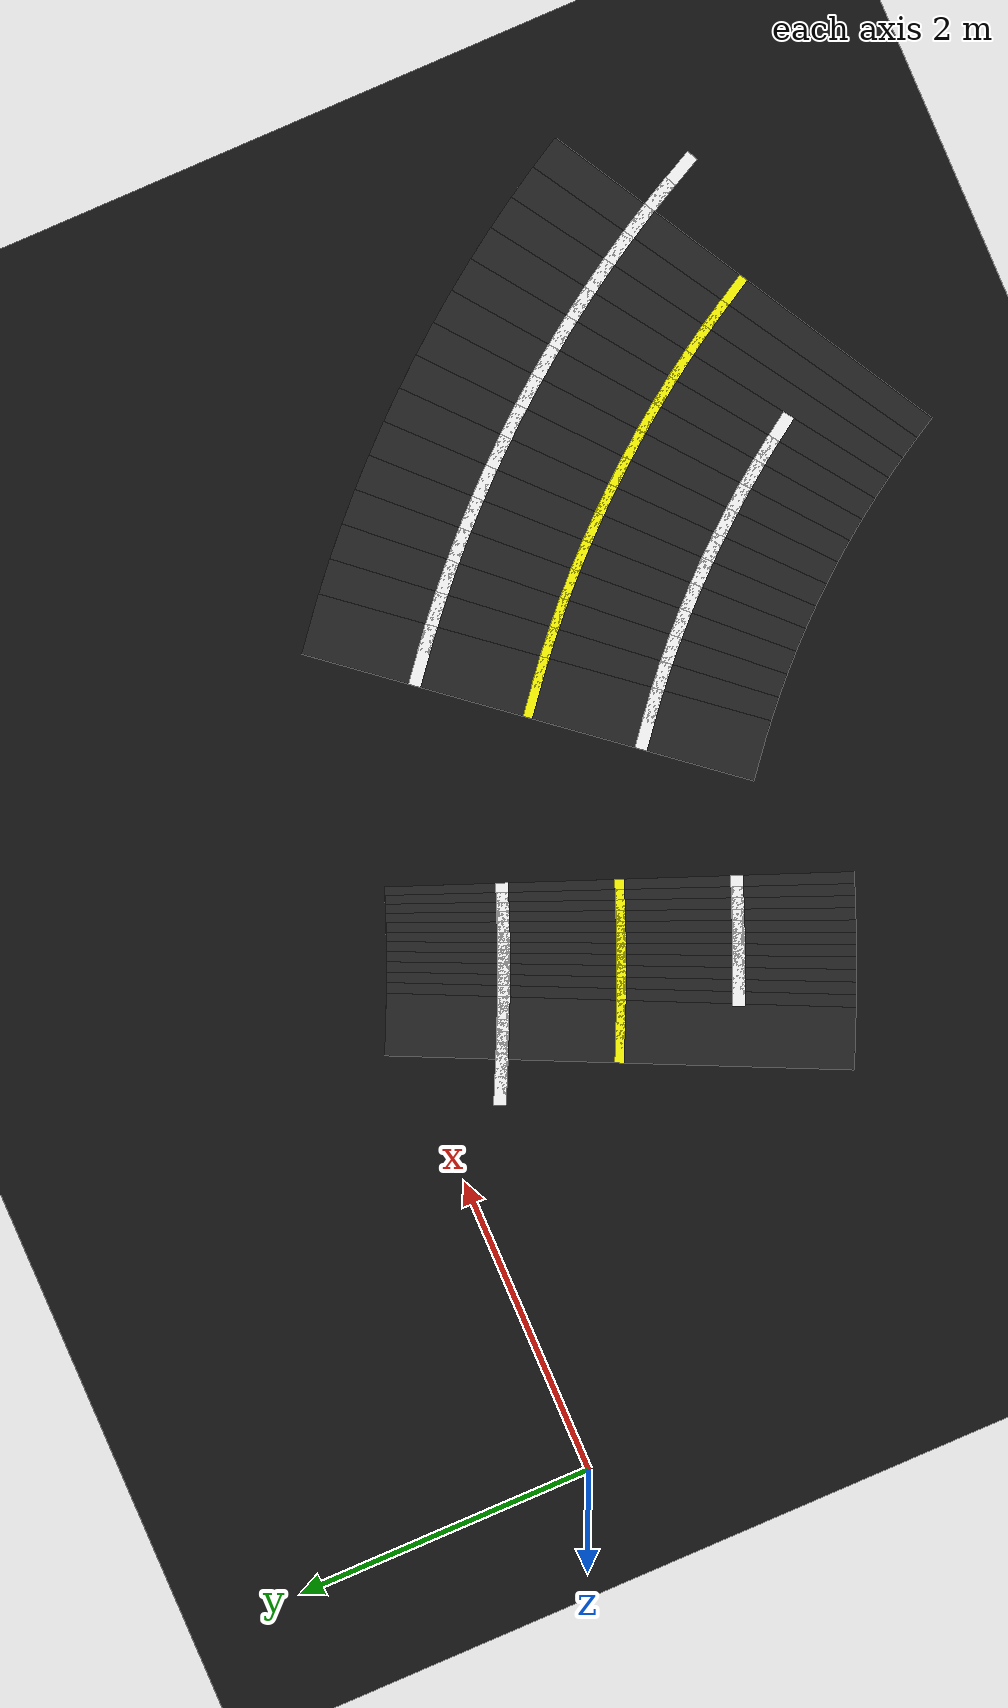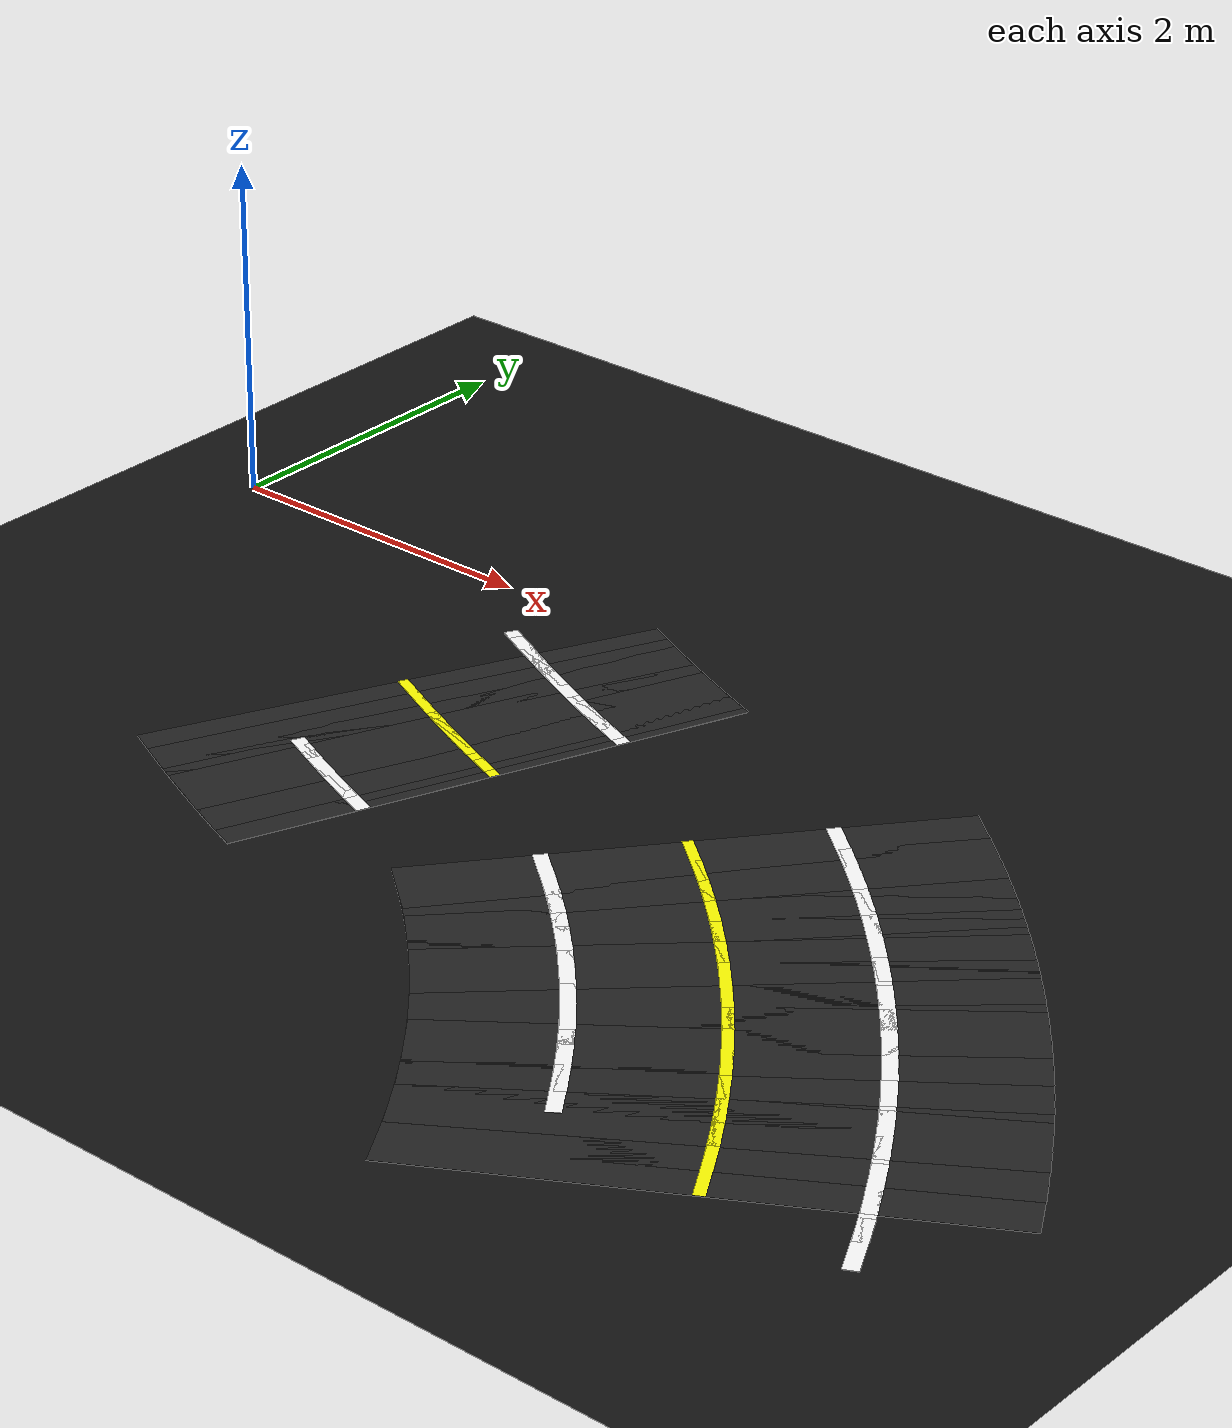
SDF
<sdf version="1.6">
 <world name="figure8_world">
  <model name="ground_plane">
   <static>true</static>
   <link name="link">
    <collision name="collision">
     <geometry><plane><normal>0 0 1</normal><size>120 120</size></plane></geometry>
    </collision>
    <visual name="visual">
     <geometry><plane><normal>0 0 1</normal><size>120 120</size></plane></geometry>
     <material><ambient>0.08 0.08 0.08 1</ambient><diffuse>0.08 0.08 0.08 1</diffuse></material>
    </visual>
   </link>
  </model>
  <model name="seg_01376">
   <static>true</static>
   <pose>4.7199 -1.6714 0.0010 0 0 -0.6807</pose>
   <link name="link">
    <collision name="collision"><geometry><box><size>0.4000 3.0000 0.002</size></box></geometry></collision>
    <visual name="visual">
     <geometry><box><size>0.4000 3.0000 0.002</size></box></geometry>
     <material><ambient>0.14 0.14 0.14 1</ambient><diffuse>0.14 0.14 0.14 1</diffuse></material>
    </visual>
   </link>
  </model>
  <model name="seg_01377">
   <static>true</static>
   <pose>5.1919 -1.0885 0.0030 0 0 -0.6807</pose>
   <link name="link">
    <collision name="collision"><geometry><box><size>0.4000 0.0800 0.002</size></box></geometry></collision>
    <visual name="visual">
     <geometry><box><size>0.4000 0.0800 0.002</size></box></geometry>
     <material><ambient>1 1 1 1</ambient><diffuse>1 1 1 1</diffuse></material>
    </visual>
   </link>
  </model>
  <model name="seg_01378">
   <static>true</static>
   <pose>4.2479 -2.2543 0.0030 0 0 -0.6807</pose>
   <link name="link">
    <collision name="collision"><geometry><box><size>0.4000 0.0800 0.002</size></box></geometry></collision>
    <visual name="visual">
     <geometry><box><size>0.4000 0.0800 0.002</size></box></geometry>
     <material><ambient>1 1 1 1</ambient><diffuse>1 1 1 1</diffuse></material>
    </visual>
   </link>
  </model>
  <model name="seg_01379">
   <static>true</static>
   <pose>4.7199 -1.6714 0.0030 0 0 -0.6807</pose>
   <link name="link">
    <collision name="collision"><geometry><box><size>0.4000 0.0600 0.002</size></box></geometry></collision>
    <visual name="visual">
     <geometry><box><size>0.4000 0.0600 0.002</size></box></geometry>
     <material><ambient>1 1 0 1</ambient><diffuse>1 1 0 1</diffuse></material>
    </visual>
   </link>
  </model>
  <model name="seg_01380">
   <static>true</static>
   <pose>4.8709 -1.7970 0.0010 0 0 -0.7069</pose>
   <link name="link">
    <collision name="collision"><geometry><box><size>0.4000 3.0000 0.002</size></box></geometry></collision>
    <visual name="visual">
     <geometry><box><size>0.4000 3.0000 0.002</size></box></geometry>
     <material><ambient>0.14 0.14 0.14 1</ambient><diffuse>0.14 0.14 0.14 1</diffuse></material>
    </visual>
   </link>
  </model>
  <model name="seg_01381">
   <static>true</static>
   <pose>5.3579 -1.2267 0.0030 0 0 -0.7069</pose>
   <link name="link">
    <collision name="collision"><geometry><box><size>0.4000 0.0800 0.002</size></box></geometry></collision>
    <visual name="visual">
     <geometry><box><size>0.4000 0.0800 0.002</size></box></geometry>
     <material><ambient>1 1 1 1</ambient><diffuse>1 1 1 1</diffuse></material>
    </visual>
   </link>
  </model>
  <model name="seg_01382">
   <static>true</static>
   <pose>4.3838 -2.3673 0.0030 0 0 -0.7069</pose>
   <link name="link">
    <collision name="collision"><geometry><box><size>0.4000 0.0800 0.002</size></box></geometry></collision>
    <visual name="visual">
     <geometry><box><size>0.4000 0.0800 0.002</size></box></geometry>
     <material><ambient>1 1 1 1</ambient><diffuse>1 1 1 1</diffuse></material>
    </visual>
   </link>
  </model>
  <model name="seg_01383">
   <static>true</static>
   <pose>4.8709 -1.7970 0.0030 0 0 -0.7069</pose>
   <link name="link">
    <collision name="collision"><geometry><box><size>0.4000 0.0600 0.002</size></box></geometry></collision>
    <visual name="visual">
     <geometry><box><size>0.4000 0.0600 0.002</size></box></geometry>
     <material><ambient>1 1 0 1</ambient><diffuse>1 1 0 1</diffuse></material>
    </visual>
   </link>
  </model>
  <model name="seg_01384">
   <static>true</static>
   <pose>5.0185 -1.9264 0.0010 0 0 -0.7330</pose>
   <link name="link">
    <collision name="collision"><geometry><box><size>0.4000 3.0000 0.002</size></box></geometry></collision>
    <visual name="visual">
     <geometry><box><size>0.4000 3.0000 0.002</size></box></geometry>
     <material><ambient>0.14 0.14 0.14 1</ambient><diffuse>0.14 0.14 0.14 1</diffuse></material>
    </visual>
   </link>
  </model>
  <model name="seg_01385">
   <static>true</static>
   <pose>5.5203 -1.3691 0.0030 0 0 -0.7330</pose>
   <link name="link">
    <collision name="collision"><geometry><box><size>0.4000 0.0800 0.002</size></box></geometry></collision>
    <visual name="visual">
     <geometry><box><size>0.4000 0.0800 0.002</size></box></geometry>
     <material><ambient>1 1 1 1</ambient><diffuse>1 1 1 1</diffuse></material>
    </visual>
   </link>
  </model>
  <model name="seg_01386">
   <static>true</static>
   <pose>4.5166 -2.4838 0.0030 0 0 -0.7330</pose>
   <link name="link">
    <collision name="collision"><geometry><box><size>0.4000 0.0800 0.002</size></box></geometry></collision>
    <visual name="visual">
     <geometry><box><size>0.4000 0.0800 0.002</size></box></geometry>
     <material><ambient>1 1 1 1</ambient><diffuse>1 1 1 1</diffuse></material>
    </visual>
   </link>
  </model>
  <model name="seg_01387">
   <static>true</static>
   <pose>5.0185 -1.9264 0.0030 0 0 -0.7330</pose>
   <link name="link">
    <collision name="collision"><geometry><box><size>0.4000 0.0600 0.002</size></box></geometry></collision>
    <visual name="visual">
     <geometry><box><size>0.4000 0.0600 0.002</size></box></geometry>
     <material><ambient>1 1 0 1</ambient><diffuse>1 1 0 1</diffuse></material>
    </visual>
   </link>
  </model>
  <model name="seg_01388">
   <static>true</static>
   <pose>5.1627 -2.0597 0.0010 0 0 -0.7592</pose>
   <link name="link">
    <collision name="collision"><geometry><box><size>0.4000 3.0000 0.002</size></box></geometry></collision>
    <visual name="visual">
     <geometry><box><size>0.4000 3.0000 0.002</size></box></geometry>
     <material><ambient>0.14 0.14 0.14 1</ambient><diffuse>0.14 0.14 0.14 1</diffuse></material>
    </visual>
   </link>
  </model>
  <model name="seg_01389">
   <static>true</static>
   <pose>5.6789 -1.5157 0.0030 0 0 -0.7592</pose>
   <link name="link">
    <collision name="collision"><geometry><box><size>0.4000 0.0800 0.002</size></box></geometry></collision>
    <visual name="visual">
     <geometry><box><size>0.4000 0.0800 0.002</size></box></geometry>
     <material><ambient>1 1 1 1</ambient><diffuse>1 1 1 1</diffuse></material>
    </visual>
   </link>
  </model>
  <model name="seg_01390">
   <static>true</static>
   <pose>4.6464 -2.6037 0.0030 0 0 -0.7592</pose>
   <link name="link">
    <collision name="collision"><geometry><box><size>0.4000 0.0800 0.002</size></box></geometry></collision>
    <visual name="visual">
     <geometry><box><size>0.4000 0.0800 0.002</size></box></geometry>
     <material><ambient>1 1 1 1</ambient><diffuse>1 1 1 1</diffuse></material>
    </visual>
   </link>
  </model>
  <model name="seg_01391">
   <static>true</static>
   <pose>5.1627 -2.0597 0.0030 0 0 -0.7592</pose>
   <link name="link">
    <collision name="collision"><geometry><box><size>0.4000 0.0600 0.002</size></box></geometry></collision>
    <visual name="visual">
     <geometry><box><size>0.4000 0.0600 0.002</size></box></geometry>
     <material><ambient>1 1 0 1</ambient><diffuse>1 1 0 1</diffuse></material>
    </visual>
   </link>
  </model>
  <model name="seg_01392">
   <static>true</static>
   <pose>5.3033 -2.1967 0.0010 0 0 -0.7854</pose>
   <link name="link">
    <collision name="collision"><geometry><box><size>0.4000 3.0000 0.002</size></box></geometry></collision>
    <visual name="visual">
     <geometry><box><size>0.4000 3.0000 0.002</size></box></geometry>
     <material><ambient>0.14 0.14 0.14 1</ambient><diffuse>0.14 0.14 0.14 1</diffuse></material>
    </visual>
   </link>
  </model>
  <model name="seg_01393">
   <static>true</static>
   <pose>5.8336 -1.6664 0.0030 0 0 -0.7854</pose>
   <link name="link">
    <collision name="collision"><geometry><box><size>0.4000 0.0800 0.002</size></box></geometry></collision>
    <visual name="visual">
     <geometry><box><size>0.4000 0.0800 0.002</size></box></geometry>
     <material><ambient>1 1 1 1</ambient><diffuse>1 1 1 1</diffuse></material>
    </visual>
   </link>
  </model>
  <model name="seg_01394">
   <static>true</static>
   <pose>4.7730 -2.7270 0.0030 0 0 -0.7854</pose>
   <link name="link">
    <collision name="collision"><geometry><box><size>0.4000 0.0800 0.002</size></box></geometry></collision>
    <visual name="visual">
     <geometry><box><size>0.4000 0.0800 0.002</size></box></geometry>
     <material><ambient>1 1 1 1</ambient><diffuse>1 1 1 1</diffuse></material>
    </visual>
   </link>
  </model>
  <model name="seg_01395">
   <static>true</static>
   <pose>5.3033 -2.1967 0.0030 0 0 -0.7854</pose>
   <link name="link">
    <collision name="collision"><geometry><box><size>0.4000 0.0600 0.002</size></box></geometry></collision>
    <visual name="visual">
     <geometry><box><size>0.4000 0.0600 0.002</size></box></geometry>
     <material><ambient>1 1 0 1</ambient><diffuse>1 1 0 1</diffuse></material>
    </visual>
   </link>
  </model>
  <model name="seg_01396">
   <static>true</static>
   <pose>5.4403 -2.3373 0.0010 0 0 -0.8116</pose>
   <link name="link">
    <collision name="collision"><geometry><box><size>0.4000 3.0000 0.002</size></box></geometry></collision>
    <visual name="visual">
     <geometry><box><size>0.4000 3.0000 0.002</size></box></geometry>
     <material><ambient>0.14 0.14 0.14 1</ambient><diffuse>0.14 0.14 0.14 1</diffuse></material>
    </visual>
   </link>
  </model>
  <model name="seg_01397">
   <static>true</static>
   <pose>5.9843 -1.8211 0.0030 0 0 -0.8116</pose>
   <link name="link">
    <collision name="collision"><geometry><box><size>0.4000 0.0800 0.002</size></box></geometry></collision>
    <visual name="visual">
     <geometry><box><size>0.4000 0.0800 0.002</size></box></geometry>
     <material><ambient>1 1 1 1</ambient><diffuse>1 1 1 1</diffuse></material>
    </visual>
   </link>
  </model>
  <model name="seg_01398">
   <static>true</static>
   <pose>4.8963 -2.8536 0.0030 0 0 -0.8116</pose>
   <link name="link">
    <collision name="collision"><geometry><box><size>0.4000 0.0800 0.002</size></box></geometry></collision>
    <visual name="visual">
     <geometry><box><size>0.4000 0.0800 0.002</size></box></geometry>
     <material><ambient>1 1 1 1</ambient><diffuse>1 1 1 1</diffuse></material>
    </visual>
   </link>
  </model>
  <model name="seg_01399">
   <static>true</static>
   <pose>5.4403 -2.3373 0.0030 0 0 -0.8116</pose>
   <link name="link">
    <collision name="collision"><geometry><box><size>0.4000 0.0600 0.002</size></box></geometry></collision>
    <visual name="visual">
     <geometry><box><size>0.4000 0.0600 0.002</size></box></geometry>
     <material><ambient>1 1 0 1</ambient><diffuse>1 1 0 1</diffuse></material>
    </visual>
   </link>
  </model>
  <model name="seg_01400">
   <static>true</static>
   <pose>5.5736 -2.4815 0.0010 0 0 -0.8378</pose>
   <link name="link">
    <collision name="collision"><geometry><box><size>0.4000 3.0000 0.002</size></box></geometry></collision>
    <visual name="visual">
     <geometry><box><size>0.4000 3.0000 0.002</size></box></geometry>
     <material><ambient>0.14 0.14 0.14 1</ambient><diffuse>0.14 0.14 0.14 1</diffuse></material>
    </visual>
   </link>
  </model>
  <model name="seg_01401">
   <static>true</static>
   <pose>6.1309 -1.9797 0.0030 0 0 -0.8378</pose>
   <link name="link">
    <collision name="collision"><geometry><box><size>0.4000 0.0800 0.002</size></box></geometry></collision>
    <visual name="visual">
     <geometry><box><size>0.4000 0.0800 0.002</size></box></geometry>
     <material><ambient>1 1 1 1</ambient><diffuse>1 1 1 1</diffuse></material>
    </visual>
   </link>
  </model>
  <model name="seg_01402">
   <static>true</static>
   <pose>5.0162 -2.9834 0.0030 0 0 -0.8378</pose>
   <link name="link">
    <collision name="collision"><geometry><box><size>0.4000 0.0800 0.002</size></box></geometry></collision>
    <visual name="visual">
     <geometry><box><size>0.4000 0.0800 0.002</size></box></geometry>
     <material><ambient>1 1 1 1</ambient><diffuse>1 1 1 1</diffuse></material>
    </visual>
   </link>
  </model>
  <model name="seg_01403">
   <static>true</static>
   <pose>5.5736 -2.4815 0.0030 0 0 -0.8378</pose>
   <link name="link">
    <collision name="collision"><geometry><box><size>0.4000 0.0600 0.002</size></box></geometry></collision>
    <visual name="visual">
     <geometry><box><size>0.4000 0.0600 0.002</size></box></geometry>
     <material><ambient>1 1 0 1</ambient><diffuse>1 1 0 1</diffuse></material>
    </visual>
   </link>
  </model>
  <model name="seg_01404">
   <static>true</static>
   <pose>5.7030 -2.6291 0.0010 0 0 -0.8639</pose>
   <link name="link">
    <collision name="collision"><geometry><box><size>0.4000 3.0000 0.002</size></box></geometry></collision>
    <visual name="visual">
     <geometry><box><size>0.4000 3.0000 0.002</size></box></geometry>
     <material><ambient>0.14 0.14 0.14 1</ambient><diffuse>0.14 0.14 0.14 1</diffuse></material>
    </visual>
   </link>
  </model>
  <model name="seg_01405">
   <static>true</static>
   <pose>6.2733 -2.1421 0.0030 0 0 -0.8639</pose>
   <link name="link">
    <collision name="collision"><geometry><box><size>0.4000 0.0800 0.002</size></box></geometry></collision>
    <visual name="visual">
     <geometry><box><size>0.4000 0.0800 0.002</size></box></geometry>
     <material><ambient>1 1 1 1</ambient><diffuse>1 1 1 1</diffuse></material>
    </visual>
   </link>
  </model>
  <model name="seg_01406">
   <static>true</static>
   <pose>5.1327 -3.1162 0.0030 0 0 -0.8639</pose>
   <link name="link">
    <collision name="collision"><geometry><box><size>0.4000 0.0800 0.002</size></box></geometry></collision>
    <visual name="visual">
     <geometry><box><size>0.4000 0.0800 0.002</size></box></geometry>
     <material><ambient>1 1 1 1</ambient><diffuse>1 1 1 1</diffuse></material>
    </visual>
   </link>
  </model>
  <model name="seg_01407">
   <static>true</static>
   <pose>5.7030 -2.6291 0.0030 0 0 -0.8639</pose>
   <link name="link">
    <collision name="collision"><geometry><box><size>0.4000 0.0600 0.002</size></box></geometry></collision>
    <visual name="visual">
     <geometry><box><size>0.4000 0.0600 0.002</size></box></geometry>
     <material><ambient>1 1 0 1</ambient><diffuse>1 1 0 1</diffuse></material>
    </visual>
   </link>
  </model>
  <model name="seg_01408">
   <static>true</static>
   <pose>5.8286 -2.7801 0.0010 0 0 -0.8901</pose>
   <link name="link">
    <collision name="collision"><geometry><box><size>0.4000 3.0000 0.002</size></box></geometry></collision>
    <visual name="visual">
     <geometry><box><size>0.4000 3.0000 0.002</size></box></geometry>
     <material><ambient>0.14 0.14 0.14 1</ambient><diffuse>0.14 0.14 0.14 1</diffuse></material>
    </visual>
   </link>
  </model>
  <model name="seg_01409">
   <static>true</static>
   <pose>6.4115 -2.3081 0.0030 0 0 -0.8901</pose>
   <link name="link">
    <collision name="collision"><geometry><box><size>0.4000 0.0800 0.002</size></box></geometry></collision>
    <visual name="visual">
     <geometry><box><size>0.4000 0.0800 0.002</size></box></geometry>
     <material><ambient>1 1 1 1</ambient><diffuse>1 1 1 1</diffuse></material>
    </visual>
   </link>
  </model>
  <model name="seg_01410">
   <static>true</static>
   <pose>5.2457 -3.2521 0.0030 0 0 -0.8901</pose>
   <link name="link">
    <collision name="collision"><geometry><box><size>0.4000 0.0800 0.002</size></box></geometry></collision>
    <visual name="visual">
     <geometry><box><size>0.4000 0.0800 0.002</size></box></geometry>
     <material><ambient>1 1 1 1</ambient><diffuse>1 1 1 1</diffuse></material>
    </visual>
   </link>
  </model>
  <model name="seg_01411">
   <static>true</static>
   <pose>5.8286 -2.7801 0.0030 0 0 -0.8901</pose>
   <link name="link">
    <collision name="collision"><geometry><box><size>0.4000 0.0600 0.002</size></box></geometry></collision>
    <visual name="visual">
     <geometry><box><size>0.4000 0.0600 0.002</size></box></geometry>
     <material><ambient>1 1 0 1</ambient><diffuse>1 1 0 1</diffuse></material>
    </visual>
   </link>
  </model>
  <model name="seg_01412">
   <static>true</static>
   <pose>5.9502 -2.9343 0.0010 0 0 -0.9163</pose>
   <link name="link">
    <collision name="collision"><geometry><box><size>0.4000 3.0000 0.002</size></box></geometry></collision>
    <visual name="visual">
     <geometry><box><size>0.4000 3.0000 0.002</size></box></geometry>
     <material><ambient>0.14 0.14 0.14 1</ambient><diffuse>0.14 0.14 0.14 1</diffuse></material>
    </visual>
   </link>
  </model>
  <model name="seg_01413">
   <static>true</static>
   <pose>6.5452 -2.4777 0.0030 0 0 -0.9163</pose>
   <link name="link">
    <collision name="collision"><geometry><box><size>0.4000 0.0800 0.002</size></box></geometry></collision>
    <visual name="visual">
     <geometry><box><size>0.4000 0.0800 0.002</size></box></geometry>
     <material><ambient>1 1 1 1</ambient><diffuse>1 1 1 1</diffuse></material>
    </visual>
   </link>
  </model>
  <model name="seg_01414">
   <static>true</static>
   <pose>5.3551 -3.3909 0.0030 0 0 -0.9163</pose>
   <link name="link">
    <collision name="collision"><geometry><box><size>0.4000 0.0800 0.002</size></box></geometry></collision>
    <visual name="visual">
     <geometry><box><size>0.4000 0.0800 0.002</size></box></geometry>
     <material><ambient>1 1 1 1</ambient><diffuse>1 1 1 1</diffuse></material>
    </visual>
   </link>
  </model>
  <model name="seg_01415">
   <static>true</static>
   <pose>5.9502 -2.9343 0.0030 0 0 -0.9163</pose>
   <link name="link">
    <collision name="collision"><geometry><box><size>0.4000 0.0600 0.002</size></box></geometry></collision>
    <visual name="visual">
     <geometry><box><size>0.4000 0.0600 0.002</size></box></geometry>
     <material><ambient>1 1 0 1</ambient><diffuse>1 1 0 1</diffuse></material>
    </visual>
   </link>
  </model>
  <model name="seg_01416">
   <static>true</static>
   <pose>6.0676 -3.0916 0.0010 0 0 -0.9425</pose>
   <link name="link">
    <collision name="collision"><geometry><box><size>0.4000 3.0000 0.002</size></box></geometry></collision>
    <visual name="visual">
     <geometry><box><size>0.4000 3.0000 0.002</size></box></geometry>
     <material><ambient>0.14 0.14 0.14 1</ambient><diffuse>0.14 0.14 0.14 1</diffuse></material>
    </visual>
   </link>
  </model>
  <model name="seg_01417">
   <static>true</static>
   <pose>6.6744 -2.6508 0.0030 0 0 -0.9425</pose>
   <link name="link">
    <collision name="collision"><geometry><box><size>0.4000 0.0800 0.002</size></box></geometry></collision>
    <visual name="visual">
     <geometry><box><size>0.4000 0.0800 0.002</size></box></geometry>
     <material><ambient>1 1 1 1</ambient><diffuse>1 1 1 1</diffuse></material>
    </visual>
   </link>
  </model>
  <model name="seg_01418">
   <static>true</static>
   <pose>5.4609 -3.5324 0.0030 0 0 -0.9425</pose>
   <link name="link">
    <collision name="collision"><geometry><box><size>0.4000 0.0800 0.002</size></box></geometry></collision>
    <visual name="visual">
     <geometry><box><size>0.4000 0.0800 0.002</size></box></geometry>
     <material><ambient>1 1 1 1</ambient><diffuse>1 1 1 1</diffuse></material>
    </visual>
   </link>
  </model>
  <model name="seg_01419">
   <static>true</static>
   <pose>6.0676 -3.0916 0.0030 0 0 -0.9425</pose>
   <link name="link">
    <collision name="collision"><geometry><box><size>0.4000 0.0600 0.002</size></box></geometry></collision>
    <visual name="visual">
     <geometry><box><size>0.4000 0.0600 0.002</size></box></geometry>
     <material><ambient>1 1 0 1</ambient><diffuse>1 1 0 1</diffuse></material>
    </visual>
   </link>
  </model>
  <model name="seg_01420">
   <static>true</static>
   <pose>6.1809 -3.2520 0.0010 0 0 -0.9687</pose>
   <link name="link">
    <collision name="collision"><geometry><box><size>0.4000 3.0000 0.002</size></box></geometry></collision>
    <visual name="visual">
     <geometry><box><size>0.4000 3.0000 0.002</size></box></geometry>
     <material><ambient>0.14 0.14 0.14 1</ambient><diffuse>0.14 0.14 0.14 1</diffuse></material>
    </visual>
   </link>
  </model>
  <model name="seg_01421">
   <static>true</static>
   <pose>6.7990 -2.8271 0.0030 0 0 -0.9687</pose>
   <link name="link">
    <collision name="collision"><geometry><box><size>0.4000 0.0800 0.002</size></box></geometry></collision>
    <visual name="visual">
     <geometry><box><size>0.4000 0.0800 0.002</size></box></geometry>
     <material><ambient>1 1 1 1</ambient><diffuse>1 1 1 1</diffuse></material>
    </visual>
   </link>
  </model>
  <model name="seg_01422">
   <static>true</static>
   <pose>5.5629 -3.6768 0.0030 0 0 -0.9687</pose>
   <link name="link">
    <collision name="collision"><geometry><box><size>0.4000 0.0800 0.002</size></box></geometry></collision>
    <visual name="visual">
     <geometry><box><size>0.4000 0.0800 0.002</size></box></geometry>
     <material><ambient>1 1 1 1</ambient><diffuse>1 1 1 1</diffuse></material>
    </visual>
   </link>
  </model>
  <model name="seg_01423">
   <static>true</static>
   <pose>6.1809 -3.2520 0.0030 0 0 -0.9687</pose>
   <link name="link">
    <collision name="collision"><geometry><box><size>0.4000 0.0600 0.002</size></box></geometry></collision>
    <visual name="visual">
     <geometry><box><size>0.4000 0.0600 0.002</size></box></geometry>
     <material><ambient>1 1 0 1</ambient><diffuse>1 1 0 1</diffuse></material>
    </visual>
   </link>
  </model>
  <model name="seg_01424">
   <static>true</static>
   <pose>6.2900 -3.4152 0.0010 0 0 -0.9948</pose>
   <link name="link">
    <collision name="collision"><geometry><box><size>0.4000 3.0000 0.002</size></box></geometry></collision>
    <visual name="visual">
     <geometry><box><size>0.4000 3.0000 0.002</size></box></geometry>
     <material><ambient>0.14 0.14 0.14 1</ambient><diffuse>0.14 0.14 0.14 1</diffuse></material>
    </visual>
   </link>
  </model>
  <model name="seg_01425">
   <static>true</static>
   <pose>6.9190 -3.0067 0.0030 0 0 -0.9948</pose>
   <link name="link">
    <collision name="collision"><geometry><box><size>0.4000 0.0800 0.002</size></box></geometry></collision>
    <visual name="visual">
     <geometry><box><size>0.4000 0.0800 0.002</size></box></geometry>
     <material><ambient>1 1 1 1</ambient><diffuse>1 1 1 1</diffuse></material>
    </visual>
   </link>
  </model>
  <model name="seg_01427">
   <static>true</static>
   <pose>6.2900 -3.4152 0.0030 0 0 -0.9948</pose>
   <link name="link">
    <collision name="collision"><geometry><box><size>0.4000 0.0600 0.002</size></box></geometry></collision>
    <visual name="visual">
     <geometry><box><size>0.4000 0.0600 0.002</size></box></geometry>
     <material><ambient>1 1 0 1</ambient><diffuse>1 1 0 1</diffuse></material>
    </visual>
   </link>
  </model>
  <model name="seg_01428">
   <static>true</static>
   <pose>6.3948 -3.5813 0.0010 0 0 -1.0210</pose>
   <link name="link">
    <collision name="collision"><geometry><box><size>0.4000 3.0000 0.002</size></box></geometry></collision>
    <visual name="visual">
     <geometry><box><size>0.4000 3.0000 0.002</size></box></geometry>
     <material><ambient>0.14 0.14 0.14 1</ambient><diffuse>0.14 0.14 0.14 1</diffuse></material>
    </visual>
   </link>
  </model>
  <model name="seg_01429">
   <static>true</static>
   <pose>7.0343 -3.1894 0.0030 0 0 -1.0210</pose>
   <link name="link">
    <collision name="collision"><geometry><box><size>0.4000 0.0800 0.002</size></box></geometry></collision>
    <visual name="visual">
     <geometry><box><size>0.4000 0.0800 0.002</size></box></geometry>
     <material><ambient>1 1 1 1</ambient><diffuse>1 1 1 1</diffuse></material>
    </visual>
   </link>
  </model>
  <model name="seg_01431">
   <static>true</static>
   <pose>6.3948 -3.5813 0.0030 0 0 -1.0210</pose>
   <link name="link">
    <collision name="collision"><geometry><box><size>0.4000 0.0600 0.002</size></box></geometry></collision>
    <visual name="visual">
     <geometry><box><size>0.4000 0.0600 0.002</size></box></geometry>
     <material><ambient>1 1 0 1</ambient><diffuse>1 1 0 1</diffuse></material>
    </visual>
   </link>
  </model>
  <model name="seg_01432">
   <static>true</static>
   <pose>6.4952 -3.7500 0.0010 0 0 -1.0472</pose>
   <link name="link">
    <collision name="collision"><geometry><box><size>0.4000 3.0000 0.002</size></box></geometry></collision>
    <visual name="visual">
     <geometry><box><size>0.4000 3.0000 0.002</size></box></geometry>
     <material><ambient>0.14 0.14 0.14 1</ambient><diffuse>0.14 0.14 0.14 1</diffuse></material>
    </visual>
   </link>
  </model>
  <model name="seg_01433">
   <static>true</static>
   <pose>7.1447 -3.3750 0.0030 0 0 -1.0472</pose>
   <link name="link">
    <collision name="collision"><geometry><box><size>0.4000 0.0800 0.002</size></box></geometry></collision>
    <visual name="visual">
     <geometry><box><size>0.4000 0.0800 0.002</size></box></geometry>
     <material><ambient>1 1 1 1</ambient><diffuse>1 1 1 1</diffuse></material>
    </visual>
   </link>
  </model>
  <model name="seg_01435">
   <static>true</static>
   <pose>6.4952 -3.7500 0.0030 0 0 -1.0472</pose>
   <link name="link">
    <collision name="collision"><geometry><box><size>0.4000 0.0600 0.002</size></box></geometry></collision>
    <visual name="visual">
     <geometry><box><size>0.4000 0.0600 0.002</size></box></geometry>
     <material><ambient>1 1 0 1</ambient><diffuse>1 1 0 1</diffuse></material>
    </visual>
   </link>
  </model>
  <model name="seg_01437">
   <static>true</static>
   <pose>7.2502 -3.5634 0.0030 0 0 -1.0734</pose>
   <link name="link">
    <collision name="collision"><geometry><box><size>0.4000 0.0800 0.002</size></box></geometry></collision>
    <visual name="visual">
     <geometry><box><size>0.4000 0.0800 0.002</size></box></geometry>
     <material><ambient>1 1 1 1</ambient><diffuse>1 1 1 1</diffuse></material>
    </visual>
   </link>
  </model>
  <model name="seg_01441">
   <static>true</static>
   <pose>7.3508 -3.7546 0.0030 0 0 -1.0996</pose>
   <link name="link">
    <collision name="collision"><geometry><box><size>0.4000 0.0800 0.002</size></box></geometry></collision>
    <visual name="visual">
     <geometry><box><size>0.4000 0.0800 0.002</size></box></geometry>
     <material><ambient>1 1 1 1</ambient><diffuse>1 1 1 1</diffuse></material>
    </visual>
   </link>
  </model>
  <model name="seg_01805">
   <static>true</static>
   <pose>2.5426 -0.4885 0.0030 0 0 -0.4531</pose>
   <link name="link">
    <collision name="collision"><geometry><box><size>0.4000 0.0800 0.002</size></box></geometry></collision>
    <visual name="visual">
     <geometry><box><size>0.4000 0.0800 0.002</size></box></geometry>
     <material><ambient>1 1 1 1</ambient><diffuse>1 1 1 1</diffuse></material>
    </visual>
   </link>
  </model>
  <model name="seg_01809">
   <static>true</static>
   <pose>2.6100 -0.5211 0.0030 0 0 -0.4495</pose>
   <link name="link">
    <collision name="collision"><geometry><box><size>0.4000 0.0800 0.002</size></box></geometry></collision>
    <visual name="visual">
     <geometry><box><size>0.4000 0.0800 0.002</size></box></geometry>
     <material><ambient>1 1 1 1</ambient><diffuse>1 1 1 1</diffuse></material>
    </visual>
   </link>
  </model>
  <model name="seg_01813">
   <static>true</static>
   <pose>2.6768 -0.5530 0.0030 0 0 -0.4458</pose>
   <link name="link">
    <collision name="collision"><geometry><box><size>0.4000 0.0800 0.002</size></box></geometry></collision>
    <visual name="visual">
     <geometry><box><size>0.4000 0.0800 0.002</size></box></geometry>
     <material><ambient>1 1 1 1</ambient><diffuse>1 1 1 1</diffuse></material>
    </visual>
   </link>
  </model>
  <model name="seg_01817">
   <static>true</static>
   <pose>2.7430 -0.5843 0.0030 0 0 -0.4418</pose>
   <link name="link">
    <collision name="collision"><geometry><box><size>0.4000 0.0800 0.002</size></box></geometry></collision>
    <visual name="visual">
     <geometry><box><size>0.4000 0.0800 0.002</size></box></geometry>
     <material><ambient>1 1 1 1</ambient><diffuse>1 1 1 1</diffuse></material>
    </visual>
   </link>
  </model>
  <model name="seg_01820">
   <static>true</static>
   <pose>2.4905 -1.2942 0.0010 0 0 -0.4376</pose>
   <link name="link">
    <collision name="collision"><geometry><box><size>0.4000 3.0000 0.002</size></box></geometry></collision>
    <visual name="visual">
     <geometry><box><size>0.4000 3.0000 0.002</size></box></geometry>
     <material><ambient>0.14 0.14 0.14 1</ambient><diffuse>0.14 0.14 0.14 1</diffuse></material>
    </visual>
   </link>
  </model>
  <model name="seg_01821">
   <static>true</static>
   <pose>2.8084 -0.6149 0.0030 0 0 -0.4376</pose>
   <link name="link">
    <collision name="collision"><geometry><box><size>0.4000 0.0800 0.002</size></box></geometry></collision>
    <visual name="visual">
     <geometry><box><size>0.4000 0.0800 0.002</size></box></geometry>
     <material><ambient>1 1 1 1</ambient><diffuse>1 1 1 1</diffuse></material>
    </visual>
   </link>
  </model>
  <model name="seg_01823">
   <static>true</static>
   <pose>2.4905 -1.2942 0.0030 0 0 -0.4376</pose>
   <link name="link">
    <collision name="collision"><geometry><box><size>0.4000 0.0600 0.002</size></box></geometry></collision>
    <visual name="visual">
     <geometry><box><size>0.4000 0.0600 0.002</size></box></geometry>
     <material><ambient>1 1 0 1</ambient><diffuse>1 1 0 1</diffuse></material>
    </visual>
   </link>
  </model>
  <model name="seg_01824">
   <static>true</static>
   <pose>2.5582 -1.3255 0.0010 0 0 -0.4333</pose>
   <link name="link">
    <collision name="collision"><geometry><box><size>0.4000 3.0000 0.002</size></box></geometry></collision>
    <visual name="visual">
     <geometry><box><size>0.4000 3.0000 0.002</size></box></geometry>
     <material><ambient>0.14 0.14 0.14 1</ambient><diffuse>0.14 0.14 0.14 1</diffuse></material>
    </visual>
   </link>
  </model>
  <model name="seg_01825">
   <static>true</static>
   <pose>2.8731 -0.6448 0.0030 0 0 -0.4333</pose>
   <link name="link">
    <collision name="collision"><geometry><box><size>0.4000 0.0800 0.002</size></box></geometry></collision>
    <visual name="visual">
     <geometry><box><size>0.4000 0.0800 0.002</size></box></geometry>
     <material><ambient>1 1 1 1</ambient><diffuse>1 1 1 1</diffuse></material>
    </visual>
   </link>
  </model>
  <model name="seg_01827">
   <static>true</static>
   <pose>2.5582 -1.3255 0.0030 0 0 -0.4333</pose>
   <link name="link">
    <collision name="collision"><geometry><box><size>0.4000 0.0600 0.002</size></box></geometry></collision>
    <visual name="visual">
     <geometry><box><size>0.4000 0.0600 0.002</size></box></geometry>
     <material><ambient>1 1 0 1</ambient><diffuse>1 1 0 1</diffuse></material>
    </visual>
   </link>
  </model>
  <model name="seg_01828">
   <static>true</static>
   <pose>2.6253 -1.3562 0.0010 0 0 -0.4287</pose>
   <link name="link">
    <collision name="collision"><geometry><box><size>0.4000 3.0000 0.002</size></box></geometry></collision>
    <visual name="visual">
     <geometry><box><size>0.4000 3.0000 0.002</size></box></geometry>
     <material><ambient>0.14 0.14 0.14 1</ambient><diffuse>0.14 0.14 0.14 1</diffuse></material>
    </visual>
   </link>
  </model>
  <model name="seg_01829">
   <static>true</static>
   <pose>2.9371 -0.6740 0.0030 0 0 -0.4287</pose>
   <link name="link">
    <collision name="collision"><geometry><box><size>0.4000 0.0800 0.002</size></box></geometry></collision>
    <visual name="visual">
     <geometry><box><size>0.4000 0.0800 0.002</size></box></geometry>
     <material><ambient>1 1 1 1</ambient><diffuse>1 1 1 1</diffuse></material>
    </visual>
   </link>
  </model>
  <model name="seg_01831">
   <static>true</static>
   <pose>2.6253 -1.3562 0.0030 0 0 -0.4287</pose>
   <link name="link">
    <collision name="collision"><geometry><box><size>0.4000 0.0600 0.002</size></box></geometry></collision>
    <visual name="visual">
     <geometry><box><size>0.4000 0.0600 0.002</size></box></geometry>
     <material><ambient>1 1 0 1</ambient><diffuse>1 1 0 1</diffuse></material>
    </visual>
   </link>
  </model>
  <model name="seg_01832">
   <static>true</static>
   <pose>2.6918 -1.3862 0.0010 0 0 -0.4238</pose>
   <link name="link">
    <collision name="collision"><geometry><box><size>0.4000 3.0000 0.002</size></box></geometry></collision>
    <visual name="visual">
     <geometry><box><size>0.4000 3.0000 0.002</size></box></geometry>
     <material><ambient>0.14 0.14 0.14 1</ambient><diffuse>0.14 0.14 0.14 1</diffuse></material>
    </visual>
   </link>
  </model>
  <model name="seg_01833">
   <static>true</static>
   <pose>3.0003 -0.7025 0.0030 0 0 -0.4238</pose>
   <link name="link">
    <collision name="collision"><geometry><box><size>0.4000 0.0800 0.002</size></box></geometry></collision>
    <visual name="visual">
     <geometry><box><size>0.4000 0.0800 0.002</size></box></geometry>
     <material><ambient>1 1 1 1</ambient><diffuse>1 1 1 1</diffuse></material>
    </visual>
   </link>
  </model>
  <model name="seg_01835">
   <static>true</static>
   <pose>2.6918 -1.3862 0.0030 0 0 -0.4238</pose>
   <link name="link">
    <collision name="collision"><geometry><box><size>0.4000 0.0600 0.002</size></box></geometry></collision>
    <visual name="visual">
     <geometry><box><size>0.4000 0.0600 0.002</size></box></geometry>
     <material><ambient>1 1 0 1</ambient><diffuse>1 1 0 1</diffuse></material>
    </visual>
   </link>
  </model>
  <model name="seg_01836">
   <static>true</static>
   <pose>2.7577 -1.4155 0.0010 0 0 -0.4187</pose>
   <link name="link">
    <collision name="collision"><geometry><box><size>0.4000 3.0000 0.002</size></box></geometry></collision>
    <visual name="visual">
     <geometry><box><size>0.4000 3.0000 0.002</size></box></geometry>
     <material><ambient>0.14 0.14 0.14 1</ambient><diffuse>0.14 0.14 0.14 1</diffuse></material>
    </visual>
   </link>
  </model>
  <model name="seg_01837">
   <static>true</static>
   <pose>3.0626 -0.7303 0.0030 0 0 -0.4187</pose>
   <link name="link">
    <collision name="collision"><geometry><box><size>0.4000 0.0800 0.002</size></box></geometry></collision>
    <visual name="visual">
     <geometry><box><size>0.4000 0.0800 0.002</size></box></geometry>
     <material><ambient>1 1 1 1</ambient><diffuse>1 1 1 1</diffuse></material>
    </visual>
   </link>
  </model>
  <model name="seg_01839">
   <static>true</static>
   <pose>2.7577 -1.4155 0.0030 0 0 -0.4187</pose>
   <link name="link">
    <collision name="collision"><geometry><box><size>0.4000 0.0600 0.002</size></box></geometry></collision>
    <visual name="visual">
     <geometry><box><size>0.4000 0.0600 0.002</size></box></geometry>
     <material><ambient>1 1 0 1</ambient><diffuse>1 1 0 1</diffuse></material>
    </visual>
   </link>
  </model>
  <model name="seg_01840">
   <static>true</static>
   <pose>2.8229 -1.4441 0.0010 0 0 -0.4134</pose>
   <link name="link">
    <collision name="collision"><geometry><box><size>0.4000 3.0000 0.002</size></box></geometry></collision>
    <visual name="visual">
     <geometry><box><size>0.4000 3.0000 0.002</size></box></geometry>
     <material><ambient>0.14 0.14 0.14 1</ambient><diffuse>0.14 0.14 0.14 1</diffuse></material>
    </visual>
   </link>
  </model>
  <model name="seg_01841">
   <static>true</static>
   <pose>3.1242 -0.7573 0.0030 0 0 -0.4134</pose>
   <link name="link">
    <collision name="collision"><geometry><box><size>0.4000 0.0800 0.002</size></box></geometry></collision>
    <visual name="visual">
     <geometry><box><size>0.4000 0.0800 0.002</size></box></geometry>
     <material><ambient>1 1 1 1</ambient><diffuse>1 1 1 1</diffuse></material>
    </visual>
   </link>
  </model>
  <model name="seg_01842">
   <static>true</static>
   <pose>2.5217 -2.1309 0.0030 0 0 -0.4134</pose>
   <link name="link">
    <collision name="collision"><geometry><box><size>0.4000 0.0800 0.002</size></box></geometry></collision>
    <visual name="visual">
     <geometry><box><size>0.4000 0.0800 0.002</size></box></geometry>
     <material><ambient>1 1 1 1</ambient><diffuse>1 1 1 1</diffuse></material>
    </visual>
   </link>
  </model>
  <model name="seg_01843">
   <static>true</static>
   <pose>2.8229 -1.4441 0.0030 0 0 -0.4134</pose>
   <link name="link">
    <collision name="collision"><geometry><box><size>0.4000 0.0600 0.002</size></box></geometry></collision>
    <visual name="visual">
     <geometry><box><size>0.4000 0.0600 0.002</size></box></geometry>
     <material><ambient>1 1 0 1</ambient><diffuse>1 1 0 1</diffuse></material>
    </visual>
   </link>
  </model>
  <model name="seg_01844">
   <static>true</static>
   <pose>2.8875 -1.4720 0.0010 0 0 -0.4077</pose>
   <link name="link">
    <collision name="collision"><geometry><box><size>0.4000 3.0000 0.002</size></box></geometry></collision>
    <visual name="visual">
     <geometry><box><size>0.4000 3.0000 0.002</size></box></geometry>
     <material><ambient>0.14 0.14 0.14 1</ambient><diffuse>0.14 0.14 0.14 1</diffuse></material>
    </visual>
   </link>
  </model>
  <model name="seg_01845">
   <static>true</static>
   <pose>3.1849 -0.7835 0.0030 0 0 -0.4077</pose>
   <link name="link">
    <collision name="collision"><geometry><box><size>0.4000 0.0800 0.002</size></box></geometry></collision>
    <visual name="visual">
     <geometry><box><size>0.4000 0.0800 0.002</size></box></geometry>
     <material><ambient>1 1 1 1</ambient><diffuse>1 1 1 1</diffuse></material>
    </visual>
   </link>
  </model>
  <model name="seg_01846">
   <static>true</static>
   <pose>2.5901 -2.1605 0.0030 0 0 -0.4077</pose>
   <link name="link">
    <collision name="collision"><geometry><box><size>0.4000 0.0800 0.002</size></box></geometry></collision>
    <visual name="visual">
     <geometry><box><size>0.4000 0.0800 0.002</size></box></geometry>
     <material><ambient>1 1 1 1</ambient><diffuse>1 1 1 1</diffuse></material>
    </visual>
   </link>
  </model>
  <model name="seg_01847">
   <static>true</static>
   <pose>2.8875 -1.4720 0.0030 0 0 -0.4077</pose>
   <link name="link">
    <collision name="collision"><geometry><box><size>0.4000 0.0600 0.002</size></box></geometry></collision>
    <visual name="visual">
     <geometry><box><size>0.4000 0.0600 0.002</size></box></geometry>
     <material><ambient>1 1 0 1</ambient><diffuse>1 1 0 1</diffuse></material>
    </visual>
   </link>
  </model>
  <model name="seg_01848">
   <static>true</static>
   <pose>2.9514 -1.4992 0.0010 0 0 -0.4018</pose>
   <link name="link">
    <collision name="collision"><geometry><box><size>0.4000 3.0000 0.002</size></box></geometry></collision>
    <visual name="visual">
     <geometry><box><size>0.4000 3.0000 0.002</size></box></geometry>
     <material><ambient>0.14 0.14 0.14 1</ambient><diffuse>0.14 0.14 0.14 1</diffuse></material>
    </visual>
   </link>
  </model>
  <model name="seg_01849">
   <static>true</static>
   <pose>3.2447 -0.8089 0.0030 0 0 -0.4018</pose>
   <link name="link">
    <collision name="collision"><geometry><box><size>0.4000 0.0800 0.002</size></box></geometry></collision>
    <visual name="visual">
     <geometry><box><size>0.4000 0.0800 0.002</size></box></geometry>
     <material><ambient>1 1 1 1</ambient><diffuse>1 1 1 1</diffuse></material>
    </visual>
   </link>
  </model>
  <model name="seg_01850">
   <static>true</static>
   <pose>2.6581 -2.1894 0.0030 0 0 -0.4018</pose>
   <link name="link">
    <collision name="collision"><geometry><box><size>0.4000 0.0800 0.002</size></box></geometry></collision>
    <visual name="visual">
     <geometry><box><size>0.4000 0.0800 0.002</size></box></geometry>
     <material><ambient>1 1 1 1</ambient><diffuse>1 1 1 1</diffuse></material>
    </visual>
   </link>
  </model>
  <model name="seg_01851">
   <static>true</static>
   <pose>2.9514 -1.4992 0.0030 0 0 -0.4018</pose>
   <link name="link">
    <collision name="collision"><geometry><box><size>0.4000 0.0600 0.002</size></box></geometry></collision>
    <visual name="visual">
     <geometry><box><size>0.4000 0.0600 0.002</size></box></geometry>
     <material><ambient>1 1 0 1</ambient><diffuse>1 1 0 1</diffuse></material>
    </visual>
   </link>
  </model>
  <model name="seg_01852">
   <static>true</static>
   <pose>3.0146 -1.5255 0.0010 0 0 -0.3955</pose>
   <link name="link">
    <collision name="collision"><geometry><box><size>0.4000 3.0000 0.002</size></box></geometry></collision>
    <visual name="visual">
     <geometry><box><size>0.4000 3.0000 0.002</size></box></geometry>
     <material><ambient>0.14 0.14 0.14 1</ambient><diffuse>0.14 0.14 0.14 1</diffuse></material>
    </visual>
   </link>
  </model>
  <model name="seg_01853">
   <static>true</static>
   <pose>3.3036 -0.8335 0.0030 0 0 -0.3955</pose>
   <link name="link">
    <collision name="collision"><geometry><box><size>0.4000 0.0800 0.002</size></box></geometry></collision>
    <visual name="visual">
     <geometry><box><size>0.4000 0.0800 0.002</size></box></geometry>
     <material><ambient>1 1 1 1</ambient><diffuse>1 1 1 1</diffuse></material>
    </visual>
   </link>
  </model>
  <model name="seg_01854">
   <static>true</static>
   <pose>2.7257 -2.2176 0.0030 0 0 -0.3955</pose>
   <link name="link">
    <collision name="collision"><geometry><box><size>0.4000 0.0800 0.002</size></box></geometry></collision>
    <visual name="visual">
     <geometry><box><size>0.4000 0.0800 0.002</size></box></geometry>
     <material><ambient>1 1 1 1</ambient><diffuse>1 1 1 1</diffuse></material>
    </visual>
   </link>
  </model>
  <model name="seg_01855">
   <static>true</static>
   <pose>3.0146 -1.5255 0.0030 0 0 -0.3955</pose>
   <link name="link">
    <collision name="collision"><geometry><box><size>0.4000 0.0600 0.002</size></box></geometry></collision>
    <visual name="visual">
     <geometry><box><size>0.4000 0.0600 0.002</size></box></geometry>
     <material><ambient>1 1 0 1</ambient><diffuse>1 1 0 1</diffuse></material>
    </visual>
   </link>
  </model>
  <model name="seg_01856">
   <static>true</static>
   <pose>3.0772 -1.5512 0.0010 0 0 -0.3889</pose>
   <link name="link">
    <collision name="collision"><geometry><box><size>0.4000 3.0000 0.002</size></box></geometry></collision>
    <visual name="visual">
     <geometry><box><size>0.4000 3.0000 0.002</size></box></geometry>
     <material><ambient>0.14 0.14 0.14 1</ambient><diffuse>0.14 0.14 0.14 1</diffuse></material>
    </visual>
   </link>
  </model>
  <model name="seg_01857">
   <static>true</static>
   <pose>3.3616 -0.8572 0.0030 0 0 -0.3889</pose>
   <link name="link">
    <collision name="collision"><geometry><box><size>0.4000 0.0800 0.002</size></box></geometry></collision>
    <visual name="visual">
     <geometry><box><size>0.4000 0.0800 0.002</size></box></geometry>
     <material><ambient>1 1 1 1</ambient><diffuse>1 1 1 1</diffuse></material>
    </visual>
   </link>
  </model>
  <model name="seg_01858">
   <static>true</static>
   <pose>2.7928 -2.2452 0.0030 0 0 -0.3889</pose>
   <link name="link">
    <collision name="collision"><geometry><box><size>0.4000 0.0800 0.002</size></box></geometry></collision>
    <visual name="visual">
     <geometry><box><size>0.4000 0.0800 0.002</size></box></geometry>
     <material><ambient>1 1 1 1</ambient><diffuse>1 1 1 1</diffuse></material>
    </visual>
   </link>
  </model>
  <model name="seg_01859">
   <static>true</static>
   <pose>3.0772 -1.5512 0.0030 0 0 -0.3889</pose>
   <link name="link">
    <collision name="collision"><geometry><box><size>0.4000 0.0600 0.002</size></box></geometry></collision>
    <visual name="visual">
     <geometry><box><size>0.4000 0.0600 0.002</size></box></geometry>
     <material><ambient>1 1 0 1</ambient><diffuse>1 1 0 1</diffuse></material>
    </visual>
   </link>
  </model>
  <model name="seg_01860">
   <static>true</static>
   <pose>3.1389 -1.5760 0.0010 0 0 -0.3820</pose>
   <link name="link">
    <collision name="collision"><geometry><box><size>0.4000 3.0000 0.002</size></box></geometry></collision>
    <visual name="visual">
     <geometry><box><size>0.4000 3.0000 0.002</size></box></geometry>
     <material><ambient>0.14 0.14 0.14 1</ambient><diffuse>0.14 0.14 0.14 1</diffuse></material>
    </visual>
   </link>
  </model>
  <model name="seg_01861">
   <static>true</static>
   <pose>3.4185 -0.8801 0.0030 0 0 -0.3820</pose>
   <link name="link">
    <collision name="collision"><geometry><box><size>0.4000 0.0800 0.002</size></box></geometry></collision>
    <visual name="visual">
     <geometry><box><size>0.4000 0.0800 0.002</size></box></geometry>
     <material><ambient>1 1 1 1</ambient><diffuse>1 1 1 1</diffuse></material>
    </visual>
   </link>
  </model>
  <model name="seg_01862">
   <static>true</static>
   <pose>2.8594 -2.2719 0.0030 0 0 -0.3820</pose>
   <link name="link">
    <collision name="collision"><geometry><box><size>0.4000 0.0800 0.002</size></box></geometry></collision>
    <visual name="visual">
     <geometry><box><size>0.4000 0.0800 0.002</size></box></geometry>
     <material><ambient>1 1 1 1</ambient><diffuse>1 1 1 1</diffuse></material>
    </visual>
   </link>
  </model>
  <model name="seg_01863">
   <static>true</static>
   <pose>3.1389 -1.5760 0.0030 0 0 -0.3820</pose>
   <link name="link">
    <collision name="collision"><geometry><box><size>0.4000 0.0600 0.002</size></box></geometry></collision>
    <visual name="visual">
     <geometry><box><size>0.4000 0.0600 0.002</size></box></geometry>
     <material><ambient>1 1 0 1</ambient><diffuse>1 1 0 1</diffuse></material>
    </visual>
   </link>
  </model>
  <model name="seg_01864">
   <static>true</static>
   <pose>3.2000 -1.6000 0.0010 0 0 -0.3747</pose>
   <link name="link">
    <collision name="collision"><geometry><box><size>0.4000 3.0000 0.002</size></box></geometry></collision>
    <visual name="visual">
     <geometry><box><size>0.4000 3.0000 0.002</size></box></geometry>
     <material><ambient>0.14 0.14 0.14 1</ambient><diffuse>0.14 0.14 0.14 1</diffuse></material>
    </visual>
   </link>
  </model>
  <model name="seg_01865">
   <static>true</static>
   <pose>3.4745 -0.9020 0.0030 0 0 -0.3747</pose>
   <link name="link">
    <collision name="collision"><geometry><box><size>0.4000 0.0800 0.002</size></box></geometry></collision>
    <visual name="visual">
     <geometry><box><size>0.4000 0.0800 0.002</size></box></geometry>
     <material><ambient>1 1 1 1</ambient><diffuse>1 1 1 1</diffuse></material>
    </visual>
   </link>
  </model>
  <model name="seg_01866">
   <static>true</static>
   <pose>2.9255 -2.2980 0.0030 0 0 -0.3747</pose>
   <link name="link">
    <collision name="collision"><geometry><box><size>0.4000 0.0800 0.002</size></box></geometry></collision>
    <visual name="visual">
     <geometry><box><size>0.4000 0.0800 0.002</size></box></geometry>
     <material><ambient>1 1 1 1</ambient><diffuse>1 1 1 1</diffuse></material>
    </visual>
   </link>
  </model>
  <model name="seg_01867">
   <static>true</static>
   <pose>3.2000 -1.6000 0.0030 0 0 -0.3747</pose>
   <link name="link">
    <collision name="collision"><geometry><box><size>0.4000 0.0600 0.002</size></box></geometry></collision>
    <visual name="visual">
     <geometry><box><size>0.4000 0.0600 0.002</size></box></geometry>
     <material><ambient>1 1 0 1</ambient><diffuse>1 1 0 1</diffuse></material>
    </visual>
   </link>
  </model>
 </world>
</sdf>
